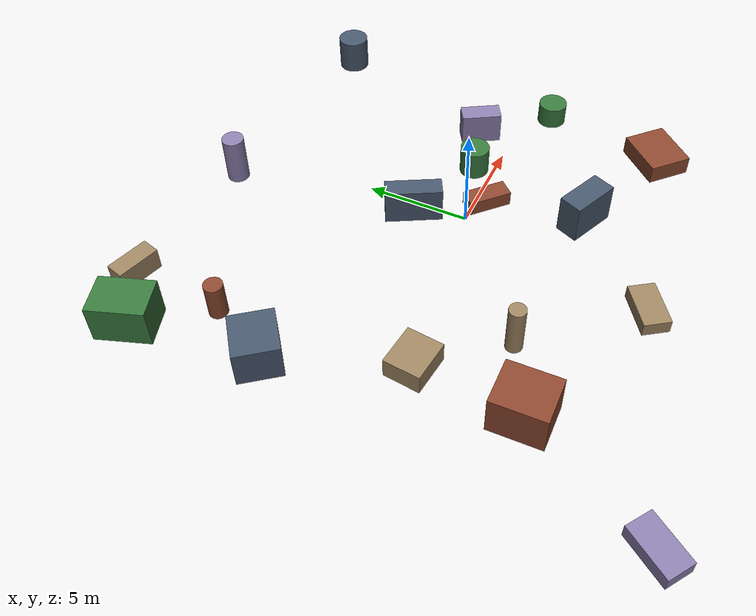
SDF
<sdf version="1.10">
 <world name="robotx_task1_uav_view">
  <gravity>0 0 -9.81</gravity>
  <physics name="physics" type="ode">
   <max_step_size>0.002</max_step_size>
   <real_time_factor>1.0</real_time_factor>
  </physics>
  <scene>
   <ambient>0.20 0.19 0.17 1.0</ambient>
   <background>0.45 0.48 0.42 1.0</background>
   <shadows>true</shadows>
   <grid>false</grid>
  </scene>
  <light name="sun" type="directional">
   <pose>0 0 300 0 0 0</pose>
   <diffuse>0.60 0.58 0.52 1.0</diffuse>
   <specular>0.30 0.35 0.28 1.0</specular>
   <direction>0.22 -0.10 -1.0</direction>
   <attenuation>
    <range>2500</range>
    <constant>0.85</constant>
    <linear>0.001</linear>
    <quadratic>0.00005</quadratic>
   </attenuation>
  </light>
  <plugin filename="gz-sim-physics-system" name="gz::sim::systems::Physics"/>
  <plugin filename="gz-sim-user-commands-system" name="gz::sim::systems::UserCommands"/>
  <plugin filename="gz-sim-scene-broadcaster-system" name="gz::sim::systems::SceneBroadcaster"/>
  <plugin filename="gz-sim-sensors-system" name="gz::sim::systems::Sensors">
   <render_engine>ogre2</render_engine>
  </plugin>
  <model name="scene_clutter_box_000">
   <static>true</static>
   <pose>-9.516 12.036 0.560 0 0 -0.266623</pose>
   <link name="link">
    <visual name="v">
     <geometry><box><size>2.042 0.894 1.081</size></box></geometry>
     <material><ambient>0.45 0.38 0.32 1.0</ambient><diffuse>0.62 0.52 0.38 1.0</diffuse></material>
    </visual>
   </link>
  </model>
  <model name="scene_clutter_box_001">
   <static>true</static>
   <pose>2.083 -5.182 0.989 0 0 -0.412258</pose>
   <link name="link">
    <visual name="v">
     <geometry><box><size>2.369 1.157 1.938</size></box></geometry>
     <material><ambient>0.18 0.22 0.28 1.0</ambient><diffuse>0.28 0.34 0.42 1.0</diffuse></material>
    </visual>
   </link>
  </model>
  <model name="scene_clutter_box_002">
   <static>true</static>
   <pose>7.821 -7.164 0.477 0 0 0.808881</pose>
   <link name="link">
    <visual name="v">
     <geometry><box><size>2.560 2.107 0.913</size></box></geometry>
     <material><ambient>0.35 0.16 0.12 1.0</ambient><diffuse>0.55 0.28 0.18 1.0</diffuse></material>
    </visual>
   </link>
  </model>
  <model name="scene_clutter_box_003">
   <static>true</static>
   <pose>-12.011 10.571 0.979 0 0 -2.811984</pose>
   <link name="link">
    <visual name="v">
     <geometry><box><size>1.908 2.582 1.917</size></box></geometry>
     <material><ambient>0.12 0.30 0.14 1.0</ambient><diffuse>0.22 0.48 0.24 1.0</diffuse></material>
    </visual>
   </link>
  </model>
  <model name="scene_clutter_cyl_004">
   <static>true</static>
   <pose>-1.927 11.456 1.232 0 0 2.154815</pose>
   <link name="link">
    <visual name="v">
     <geometry><cylinder><radius>0.532</radius><length>2.365</length></cylinder></geometry>
     <material><ambient>0.40 0.35 0.50 1.0</ambient><diffuse>0.55 0.50 0.68 1.0</diffuse></material>
    </visual>
   </link>
  </model>
  <model name="scene_clutter_cyl_005">
   <static>true</static>
   <pose>-6.213 -4.823 1.247 0 0 -1.598692</pose>
   <link name="link">
    <visual name="v">
     <geometry><cylinder><radius>0.390</radius><length>2.394</length></cylinder></geometry>
     <material><ambient>0.45 0.38 0.32 1.0</ambient><diffuse>0.62 0.52 0.38 1.0</diffuse></material>
    </visual>
   </link>
  </model>
  <model name="scene_clutter_box_006">
   <static>true</static>
   <pose>-0.746 2.373 0.901 0 0 -1.076504</pose>
   <link name="link">
    <visual name="v">
     <geometry><box><size>2.723 0.937 1.763</size></box></geometry>
     <material><ambient>0.18 0.22 0.28 1.0</ambient><diffuse>0.28 0.34 0.42 1.0</diffuse></material>
    </visual>
   </link>
  </model>
  <model name="scene_clutter_cyl_007">
   <static>true</static>
   <pose>-9.820 7.483 0.934 0 0 -0.919666</pose>
   <link name="link">
    <visual name="v">
     <geometry><cylinder><radius>0.438</radius><length>1.767</length></cylinder></geometry>
     <material><ambient>0.35 0.16 0.12 1.0</ambient><diffuse>0.55 0.28 0.18 1.0</diffuse></material>
    </visual>
   </link>
  </model>
  <model name="scene_clutter_cyl_008">
   <static>true</static>
   <pose>3.419 0.943 0.768 0 0 0.780724</pose>
   <link name="link">
    <visual name="v">
     <geometry><cylinder><radius>0.717</radius><length>1.436</length></cylinder></geometry>
     <material><ambient>0.12 0.30 0.14 1.0</ambient><diffuse>0.22 0.48 0.24 1.0</diffuse></material>
    </visual>
   </link>
  </model>
  <model name="scene_clutter_box_009">
   <static>true</static>
   <pose>-12.651 -12.642 0.360 0 0 -0.607907</pose>
   <link name="link">
    <visual name="v">
     <geometry><box><size>1.263 2.339 0.679</size></box></geometry>
     <material><ambient>0.40 0.35 0.50 1.0</ambient><diffuse>0.55 0.50 0.68 1.0</diffuse></material>
    </visual>
   </link>
  </model>
  <model name="scene_clutter_box_010">
   <static>true</static>
   <pose>-8.949 -1.446 0.523 0 0 1.460099</pose>
   <link name="link">
    <visual name="v">
     <geometry><box><size>1.744 1.982 1.006</size></box></geometry>
     <material><ambient>0.45 0.38 0.32 1.0</ambient><diffuse>0.62 0.52 0.38 1.0</diffuse></material>
    </visual>
   </link>
  </model>
  <model name="scene_clutter_box_011">
   <static>true</static>
   <pose>-11.292 4.596 0.918 0 0 2.226666</pose>
   <link name="link">
    <visual name="v">
     <geometry><box><size>2.018 2.189 1.796</size></box></geometry>
     <material><ambient>0.18 0.22 0.28 1.0</ambient><diffuse>0.28 0.34 0.42 1.0</diffuse></material>
    </visual>
   </link>
  </model>
  <model name="scene_clutter_box_012">
   <static>true</static>
   <pose>1.383 -0.545 0.388 0 0 -0.758261</pose>
   <link name="link">
    <visual name="v">
     <geometry><box><size>2.092 0.917 0.735</size></box></geometry>
     <material><ambient>0.35 0.16 0.12 1.0</ambient><diffuse>0.55 0.28 0.18 1.0</diffuse></material>
    </visual>
   </link>
  </model>
  <model name="scene_clutter_cyl_013">
   <static>true</static>
   <pose>8.821 -1.285 0.600 0 0 -2.269309</pose>
   <link name="link">
    <visual name="v">
     <geometry><cylinder><radius>0.710</radius><length>1.100</length></cylinder></geometry>
     <material><ambient>0.12 0.30 0.14 1.0</ambient><diffuse>0.22 0.48 0.24 1.0</diffuse></material>
    </visual>
   </link>
  </model>
  <model name="scene_clutter_box_014">
   <static>true</static>
   <pose>6.011 1.690 0.806 0 0 0.534607</pose>
   <link name="link">
    <visual name="v">
     <geometry><box><size>0.939 1.972 1.572</size></box></geometry>
     <material><ambient>0.40 0.35 0.50 1.0</ambient><diffuse>0.55 0.50 0.68 1.0</diffuse></material>
    </visual>
   </link>
  </model>
  <model name="scene_clutter_box_015">
   <static>true</static>
   <pose>-2.110 -9.456 0.353 0 0 0.595365</pose>
   <link name="link">
    <visual name="v">
     <geometry><box><size>2.237 1.260 0.665</size></box></geometry>
     <material><ambient>0.45 0.38 0.32 1.0</ambient><diffuse>0.62 0.52 0.38 1.0</diffuse></material>
    </visual>
   </link>
  </model>
  <model name="scene_clutter_cyl_016">
   <static>true</static>
   <pose>8.931 10.572 0.919 0 0 2.524921</pose>
   <link name="link">
    <visual name="v">
     <geometry><cylinder><radius>0.776</radius><length>1.737</length></cylinder></geometry>
     <material><ambient>0.18 0.22 0.28 1.0</ambient><diffuse>0.28 0.34 0.42 1.0</diffuse></material>
    </visual>
   </link>
  </model>
  <model name="scene_clutter_box_017">
   <static>true</static>
   <pose>-9.400 -6.417 0.990 0 0 -1.549772</pose>
   <link name="link">
    <visual name="v">
     <geometry><box><size>2.477 2.151 1.941</size></box></geometry>
     <material><ambient>0.35 0.16 0.12 1.0</ambient><diffuse>0.55 0.28 0.18 1.0</diffuse></material>
    </visual>
   </link>
  </model>
  <model name="uav_dataset_camera">
   <static>false</static>
   <pose>0 0 26 0 0 0</pose>
   <plugin filename="librobotx_overhead_motion_plugin.dylib" name="robotx::OverheadMotionPlugin">
    <radius_x_m>12.00960</radius_x_m>
    <radius_y_m>7.18201</radius_y_m>
    <angular_speed_rad_s>0.053668</angular_speed_rad_s>
    <phase_rad>2.958542</phase_rad>
    <z_wobble_m>0.05366</z_wobble_m>
    <z_wobble_hz>0.04595</z_wobble_hz>
    <z_wobble_phase_rad>4.618766</z_wobble_phase_rad>
   </plugin>
   <link name="camera_link">
    <gravity>false</gravity>
    <sensor name="top_down_rgb" type="camera">
     <always_on>true</always_on>
     <update_rate>20</update_rate>
     <pose>0 0 0 0 1.57079632679 0</pose>
     <camera>
      <horizontal_fov>1.05</horizontal_fov>
      <image><width>1920</width><height>1080</height><format>R8G8B8</format></image>
      <clip><near>0.2</near><far>600</far></clip>
     </camera>
     <topic>/robotx/uav/camera/image_raw</topic>
     <visualize>true</visualize>
    </sensor>
   </link>
  </model>
 </world>
</sdf>
